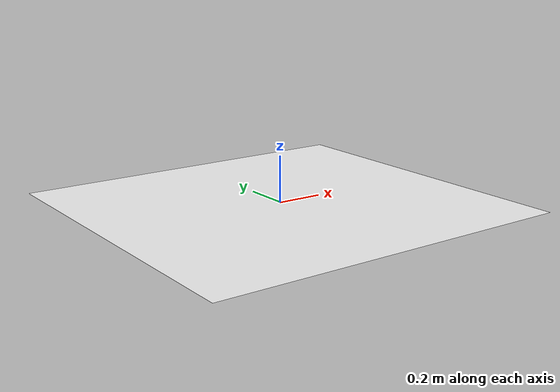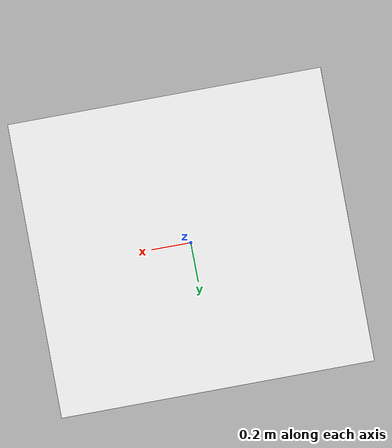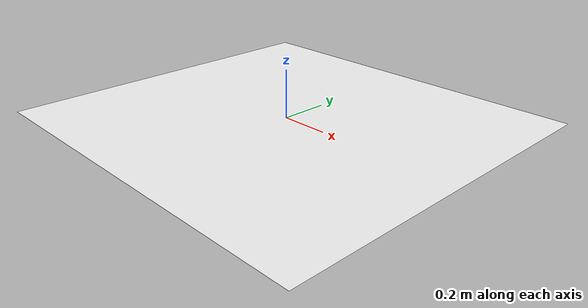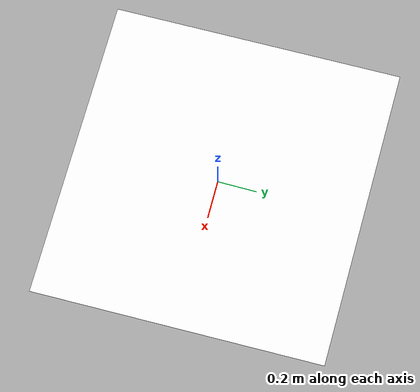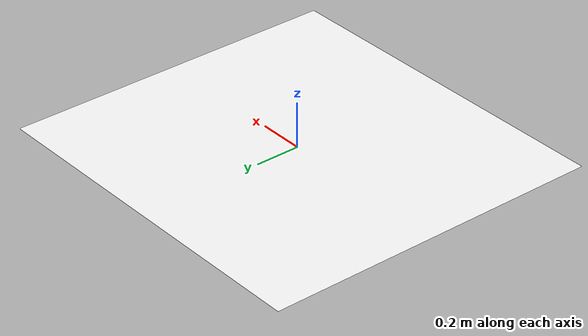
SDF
<?xml version='1.0'?>
<sdf version='1.7'>
  <model name='finish_line'>
    <link name='link'>
      <pose>0 0 0 0 -0 0</pose>
      <visual name='visual'>
        <geometry>
          <box>
            <size>1.599197 1.5 0</size>
          </box>
        </geometry>
        <material>
        <diffuse>1.0 1.0 1.0</diffuse>
          <specular>1.0 1.0 1.0</specular>
          <pbr>
          <metal>
          <albedo_map>materials/textures/race.png</albedo_map>
          </metal>
          </pbr>
          <shader type='pixel'/>
        </material>
        <pose>0 0 0 0 -0 0</pose>
        <transparency>0</transparency>
        <cast_shadows>1</cast_shadows>
      </visual>
    </link>
    <static>1</static>
  </model>
</sdf>
